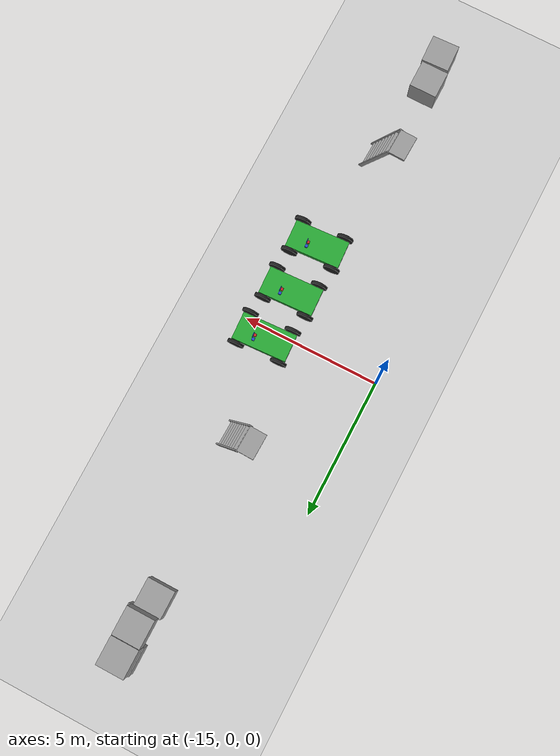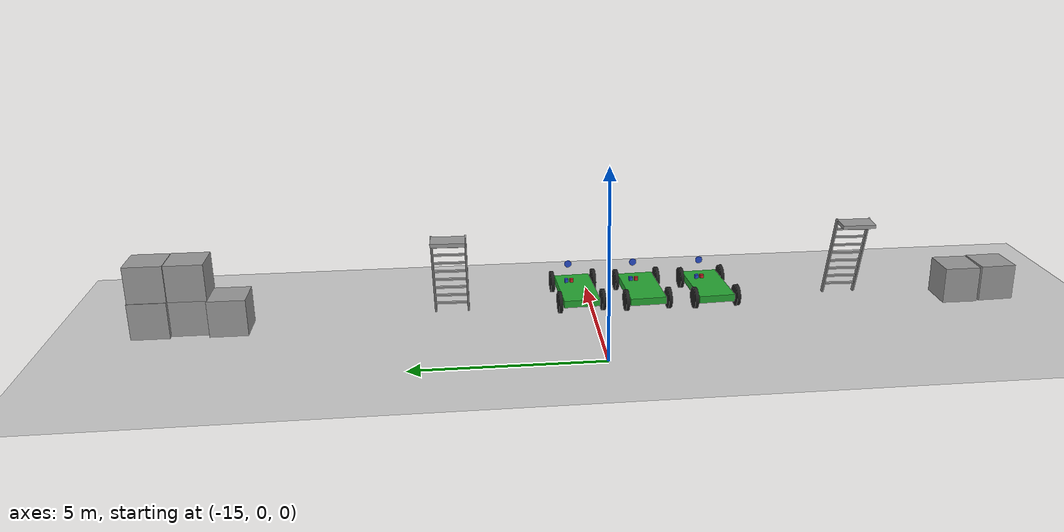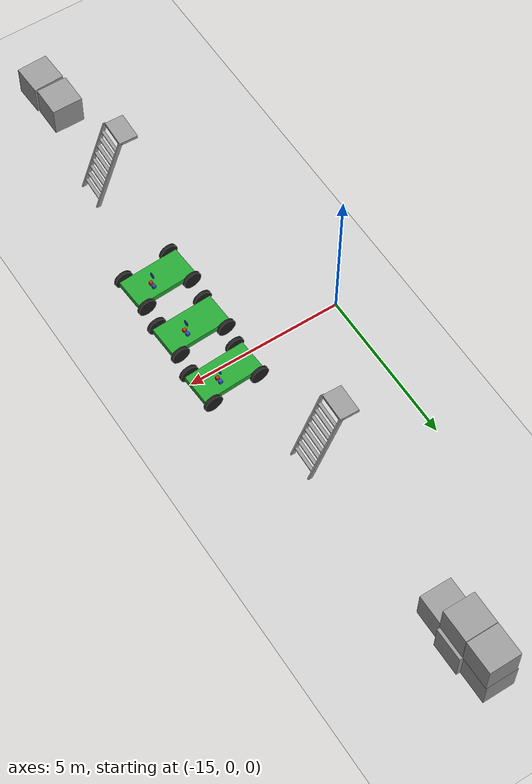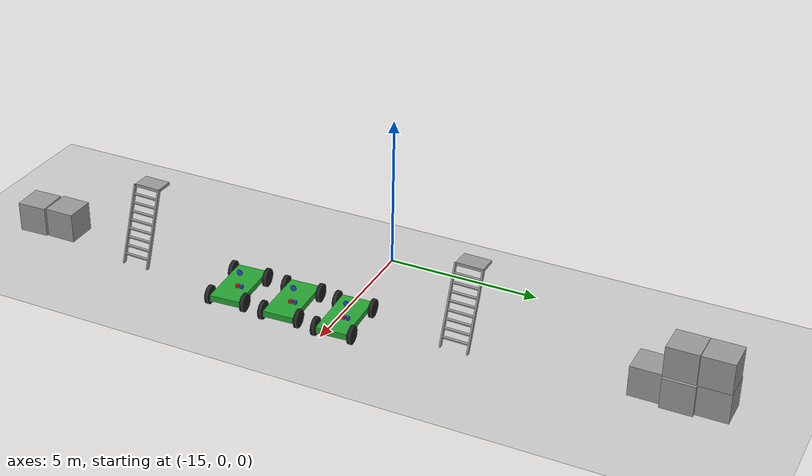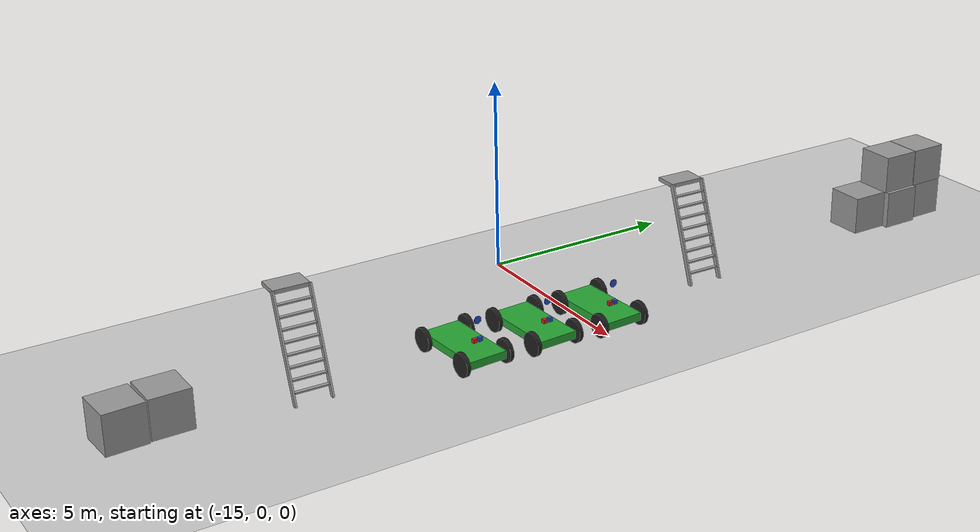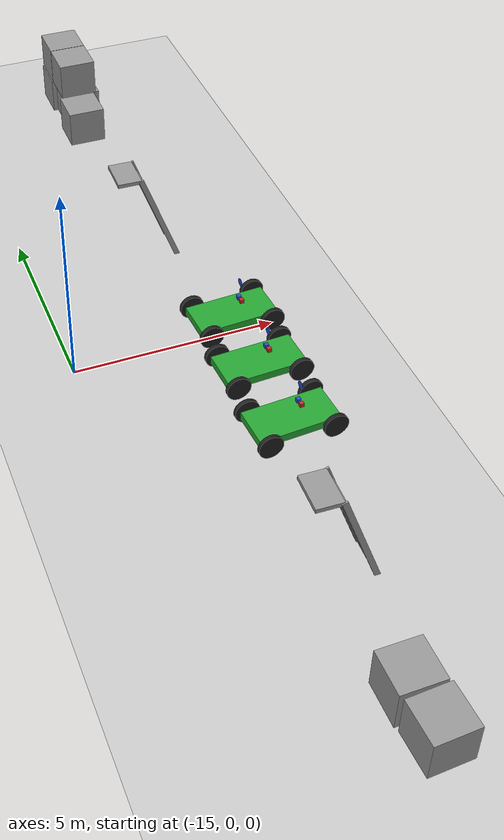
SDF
<sdf version="1.7">
 <world name="default">
  <model name="ground_plane">
   <static>1</static>
   <link name="link">
    <collision name="collision">
     <geometry><plane><normal>0 0 1</normal><size>100 100</size></plane></geometry>
     <surface>
      <contact><collide_bitmask>65535</collide_bitmask></contact>
      <friction><ode><mu>100</mu><mu2>50</mu2></ode></friction>
     </surface>
    </collision>
    <visual name="visual">
     <cast_shadows>0</cast_shadows>
     <geometry><plane><normal>0 0 1</normal><size>100 100</size></plane></geometry>
     <material>
      <script><uri>file://media/materials/scripts/gazebo.material</uri><name>Gazebo/Grey</name></script>
     </material>
    </visual>
   </link>
  </model>
  <model name="unit_box_2">
   <pose>-11.7892 11.6788 0.499993 -4e-06 -1.4e-05 -0.003827</pose>
   <link name="link">
    <inertial>
     <mass>1</mass>
     <inertia>
      <ixx>0.166667</ixx>
      <ixy>0</ixy>
      <ixz>0</ixz>
      <iyy>0.166667</iyy>
      <iyz>0</iyz>
      <izz>0.166667</izz>
     </inertia>
    </inertial>
    <collision name="collision"><geometry><box><size>1 1 1</size></box></geometry></collision>
    <visual name="visual">
     <geometry><box><size>1 1 1</size></box></geometry>
     <material>
      <script><name>Gazebo/Grey</name><uri>file://media/materials/scripts/gazebo.material</uri></script>
     </material>
    </visual>
   </link>
  </model>
  <model name="unit_box_3">
   <pose>-11.7604 11.6669 1.49999 -3.14159 1.1e-05 3.13898</pose>
   <link name="link">
    <inertial>
     <mass>1</mass>
     <inertia>
      <ixx>0.166667</ixx>
      <ixy>0</ixy>
      <ixz>0</ixz>
      <iyy>0.166667</iyy>
      <iyz>0</iyz>
      <izz>0.166667</izz>
     </inertia>
    </inertial>
    <collision name="collision"><geometry><box><size>1 1 1</size></box></geometry></collision>
    <visual name="visual">
     <geometry><box><size>1 1 1</size></box></geometry>
     <material>
      <script><name>Gazebo/Grey</name><uri>file://media/materials/scripts/gazebo.material</uri></script>
     </material>
    </visual>
   </link>
  </model>
  <model name="unit_box_4">
   <pose>-11.8313 9.67825 0.499997 -0 -5e-06 -0.002564</pose>
   <link name="link">
    <inertial>
     <mass>1</mass>
     <inertia>
      <ixx>0.166667</ixx>
      <ixy>0</ixy>
      <ixz>0</ixz>
      <iyy>0.166667</iyy>
      <iyz>0</iyz>
      <izz>0.166667</izz>
     </inertia>
    </inertial>
    <collision name="collision"><geometry><box><size>1 1 1</size></box></geometry></collision>
    <visual name="visual">
     <geometry><box><size>1 1 1</size></box></geometry>
     <material>
      <script><name>Gazebo/Grey</name><uri>file://media/materials/scripts/gazebo.material</uri></script>
     </material>
    </visual>
   </link>
  </model>
  <model name="unit_box_5">
   <pose>-11.7631 10.651 1.5 -3.14159 -0 -0.00395</pose>
   <link name="link">
    <inertial>
     <mass>1</mass>
     <inertia>
      <ixx>0.166667</ixx>
      <ixy>0</ixy>
      <ixz>0</ixz>
      <iyy>0.166667</iyy>
      <iyz>0</iyz>
      <izz>0.166667</izz>
     </inertia>
    </inertial>
    <collision name="collision"><geometry><box><size>1 1 1</size></box></geometry></collision>
    <visual name="visual">
     <geometry><box><size>1 1 1</size></box></geometry>
     <material>
      <script><name>Gazebo/Grey</name><uri>file://media/materials/scripts/gazebo.material</uri></script>
     </material>
    </visual>
   </link>
  </model>
  <model name="unit_box_6">
   <pose>-11.6633 10.6778 0.5 2e-06 -4e-06 -0.002571</pose>
   <link name="link">
    <inertial>
     <mass>1</mass>
     <inertia>
      <ixx>0.166667</ixx>
      <ixy>0</ixy>
      <ixz>0</ixz>
      <iyy>0.166667</iyy>
      <iyz>0</iyz>
      <izz>0.166667</izz>
     </inertia>
    </inertial>
    <collision name="collision"><geometry><box><size>1 1 1</size></box></geometry></collision>
    <visual name="visual">
     <geometry><box><size>1 1 1</size></box></geometry>
     <material>
      <script><name>Gazebo/Grey</name><uri>file://media/materials/scripts/gazebo.material</uri></script>
     </material>
    </visual>
   </link>
  </model>
  <model name="unit_box_17_clone_0">
   <pose>-11.7955 -10.3916 0.499995 -0 -1e-05 -0.000262</pose>
   <link name="link">
    <inertial>
     <mass>1</mass>
     <inertia>
      <ixx>0.166667</ixx>
      <ixy>0</ixy>
      <ixz>0</ixz>
      <iyy>0.166667</iyy>
      <iyz>0</iyz>
      <izz>0.166667</izz>
     </inertia>
    </inertial>
    <collision name="collision"><geometry><box><size>1 1 1</size></box></geometry></collision>
    <visual name="visual">
     <geometry><box><size>1 1 1</size></box></geometry>
     <material>
      <script><name>Gazebo/Grey</name><uri>file://media/materials/scripts/gazebo.material</uri></script>
     </material>
    </visual>
   </link>
  </model>
  <model name="unit_box_17_clone_1">
   <pose>-11.7294 -11.4535 0.499995 1.57079 -0 0.040552</pose>
   <link name="link">
    <inertial>
     <mass>1</mass>
     <inertia>
      <ixx>0.166667</ixx>
      <ixy>0</ixy>
      <ixz>0</ixz>
      <iyy>0.166667</iyy>
      <iyz>0</iyz>
      <izz>0.166667</izz>
     </inertia>
    </inertial>
    <collision name="collision"><geometry><box><size>1 1 1</size></box></geometry></collision>
    <visual name="visual">
     <geometry><box><size>1 1 1</size></box></geometry>
     <material>
      <script><name>Gazebo/Grey</name><uri>file://media/materials/scripts/gazebo.material</uri></script>
     </material>
    </visual>
   </link>
  </model>
  <model name="car">
   <link name="chassis">
    <pose>0 0 0.3 0 -0 0</pose>
    <collision name="collision"><geometry><box><size>2 1 0.2</size></box></geometry></collision>
    <visual name="visual">
     <geometry><box><size>2 1 0.2</size></box></geometry>
     <material>
      <script><uri>file://media/materials/scripts/gazebo.material</uri><name>Gazebo/Green</name></script>
     </material>
    </visual>
    <inertial>
     <inertia><ixx>1</ixx><ixy>0</ixy><ixz>0</ixz><iyy>1</iyy><iyz>0</iyz><izz>1</izz></inertia>
     <mass>1</mass>
    </inertial>
   </link>
   <link name="front_left_wheel">
    <pose>0.8 0.6 0.3 -0 1.5707 1.5707</pose>
    <collision name="collision">
     <geometry><cylinder><radius>0.3</radius><length>0.1</length></cylinder></geometry>
    </collision>
    <visual name="visual">
     <geometry><cylinder><radius>0.3</radius><length>0.1</length></cylinder></geometry>
     <material>
      <script><uri>file://media/materials/scripts/gazebo.material</uri><name>Gazebo/Black</name></script>
     </material>
    </visual>
    <inertial>
     <inertia><ixx>1</ixx><ixy>0</ixy><ixz>0</ixz><iyy>1</iyy><iyz>0</iyz><izz>1</izz></inertia>
     <mass>1</mass>
    </inertial>
   </link>
   <link name="front_right_wheel">
    <pose>0.8 -0.6 0.3 -0 1.5707 1.5707</pose>
    <collision name="collision">
     <geometry><cylinder><radius>0.3</radius><length>0.1</length></cylinder></geometry>
    </collision>
    <visual name="visual">
     <geometry><cylinder><radius>0.3</radius><length>0.1</length></cylinder></geometry>
     <material>
      <script><uri>file://media/materials/scripts/gazebo.material</uri><name>Gazebo/Black</name></script>
     </material>
    </visual>
    <inertial>
     <inertia><ixx>1</ixx><ixy>0</ixy><ixz>0</ixz><iyy>1</iyy><iyz>0</iyz><izz>1</izz></inertia>
     <mass>1</mass>
    </inertial>
   </link>
   <link name="back_right_wheel">
    <pose>-0.8 -0.6 0.3 -0 1.5707 1.5707</pose>
    <collision name="collision">
     <geometry><cylinder><radius>0.3</radius><length>0.1</length></cylinder></geometry>
    </collision>
    <visual name="visual">
     <geometry><cylinder><radius>0.3</radius><length>0.1</length></cylinder></geometry>
     <material>
      <script><uri>file://media/materials/scripts/gazebo.material</uri><name>Gazebo/Black</name></script>
     </material>
    </visual>
    <inertial>
     <inertia><ixx>1</ixx><ixy>0</ixy><ixz>0</ixz><iyy>1</iyy><iyz>0</iyz><izz>1</izz></inertia>
     <mass>1</mass>
    </inertial>
   </link>
   <link name="back_left_wheel">
    <pose>-0.8 0.6 0.3 -0 1.5707 1.5707</pose>
    <collision name="collision">
     <geometry><cylinder><radius>0.3</radius><length>0.1</length></cylinder></geometry>
    </collision>
    <visual name="visual">
     <geometry><cylinder><radius>0.3</radius><length>0.1</length></cylinder></geometry>
     <material>
      <script><uri>file://media/materials/scripts/gazebo.material</uri><name>Gazebo/Black</name></script>
     </material>
    </visual>
    <inertial>
     <inertia><ixx>1</ixx><ixy>0</ixy><ixz>0</ixz><iyy>1</iyy><iyz>0</iyz><izz>1</izz></inertia>
     <mass>1</mass>
    </inertial>
   </link>
   <link name="gas_pedal">
    <pose>0.3 0.1 0.5 0 -0 0</pose>
    <collision name="collision"><geometry><box><size>0.1 0.1 0.1</size></box></geometry></collision>
    <visual name="visual">
     <geometry><box><size>0.1 0.1 0.1</size></box></geometry>
     <material>
      <script><uri>file://media/materials/scripts/gazebo.material</uri><name>Gazebo/Red</name></script>
     </material>
    </visual>
    <inertial>
     <inertia><ixx>1</ixx><ixy>0</ixy><ixz>0</ixz><iyy>1</iyy><iyz>0</iyz><izz>1</izz></inertia>
     <mass>1</mass>
    </inertial>
   </link>
   <link name="brake_pedal">
    <pose>0.3 0.25 0.5 0 -0 0</pose>
    <collision name="collision"><geometry><box><size>0.1 0.1 0.1</size></box></geometry></collision>
    <visual name="visual">
     <geometry><box><size>0.1 0.1 0.1</size></box></geometry>
     <material>
      <script><uri>file://media/materials/scripts/gazebo.material</uri><name>Gazebo/Blue</name></script>
     </material>
    </visual>
    <inertial>
     <inertia><ixx>1</ixx><ixy>0</ixy><ixz>0</ixz><iyy>1</iyy><iyz>0</iyz><izz>1</izz></inertia>
     <mass>1</mass>
    </inertial>
   </link>
   <link name="steering_wheel">
    <pose>0.3 0.2 1 0 1.5707 0</pose>
    <collision name="collision">
     <geometry><cylinder><radius>0.1</radius><length>0.01</length></cylinder></geometry>
    </collision>
    <visual name="visual">
     <geometry><cylinder><radius>0.1</radius><length>0.01</length></cylinder></geometry>
     <material>
      <script><uri>file://media/materials/scripts/gazebo.material</uri><name>Gazebo/Blue</name></script>
     </material>
    </visual>
    <inertial>
     <inertia><ixx>1</ixx><ixy>0</ixy><ixz>0</ixz><iyy>1</iyy><iyz>0</iyz><izz>1</izz></inertia>
     <mass>1</mass>
    </inertial>
   </link>
   <joint name="gas_joint" type="prismatic">
    <parent>chassis</parent>
    <child>gas_pedal</child>
    <axis>
     <xyz expressed_in="__model__">1 0 0</xyz>
     <limit><lower>0</lower><upper>0.2</upper></limit>
     <dynamics><spring_reference>0</spring_reference><spring_stiffness>0</spring_stiffness></dynamics>
    </axis>
   </joint>
   <joint name="brake_joint" type="prismatic">
    <parent>chassis</parent>
    <child>brake_pedal</child>
    <axis>
     <xyz expressed_in="__model__">1 0 0</xyz>
     <limit><lower>0</lower><upper>0.2</upper></limit>
     <dynamics><spring_reference>0</spring_reference><spring_stiffness>0</spring_stiffness></dynamics>
    </axis>
   </joint>
   <joint name="steering_joint" type="revolute">
    <parent>chassis</parent>
    <child>steering_wheel</child>
    <axis>
     <xyz expressed_in="__model__">1 0 0</xyz>
     <limit><lower>-7.853</lower><upper>7.853</upper></limit>
     <dynamics><spring_reference>0</spring_reference><spring_stiffness>0</spring_stiffness></dynamics>
    </axis>
   </joint>
   <joint name="front_left_joint" type="revolute2">
    <parent>chassis</parent>
    <child>front_left_wheel</child>
    <axis>
     <xyz expressed_in="__model__">0 0 1</xyz>
     <limit><lower>-1.5526e-05</lower><upper>-1.5526e-05</upper></limit>
     <dynamics><spring_reference>0</spring_reference><spring_stiffness>0</spring_stiffness></dynamics>
    </axis>
    <axis2>
     <xyz expressed_in="__model__">0 1 0</xyz>
     <limit><upper>1e+16</upper><lower>-1e+16</lower></limit>
     <dynamics><spring_reference>0</spring_reference><spring_stiffness>0</spring_stiffness></dynamics>
    </axis2>
    <physics><ode><limit><cfm>0</cfm><erp>0.9</erp></limit></ode></physics>
   </joint>
   <joint name="front_right_joint" type="revolute2">
    <parent>chassis</parent>
    <child>front_right_wheel</child>
    <axis>
     <xyz expressed_in="__model__">0 0 1</xyz>
     <limit><lower>-1.5526e-05</lower><upper>-1.5526e-05</upper></limit>
     <dynamics><spring_reference>0</spring_reference><spring_stiffness>0</spring_stiffness></dynamics>
    </axis>
    <axis2>
     <xyz expressed_in="__model__">0 1 0</xyz>
     <limit><upper>1e+16</upper><lower>-1e+16</lower></limit>
     <dynamics><spring_reference>0</spring_reference><spring_stiffness>0</spring_stiffness></dynamics>
    </axis2>
    <physics><ode><limit><cfm>0</cfm><erp>0.9</erp></limit></ode></physics>
   </joint>
   <joint name="back_right_joint" type="revolute2">
    <parent>chassis</parent>
    <child>back_right_wheel</child>
    <axis>
     <xyz expressed_in="__model__">0 0 1</xyz>
     <limit><lower>0</lower><upper>0</upper></limit>
     <dynamics><spring_reference>0</spring_reference><spring_stiffness>0</spring_stiffness></dynamics>
    </axis>
    <axis2>
     <xyz expressed_in="__model__">0 1 0</xyz>
     <limit><upper>1e+16</upper><lower>-1e+16</lower></limit>
     <dynamics><spring_reference>0</spring_reference><spring_stiffness>0</spring_stiffness></dynamics>
    </axis2>
    <physics><ode><limit><cfm>0</cfm><erp>0.9</erp></limit></ode></physics>
   </joint>
   <joint name="back_left_joint" type="revolute2">
    <parent>chassis</parent>
    <child>back_left_wheel</child>
    <axis>
     <xyz expressed_in="__model__">0 0 1</xyz>
     <limit><lower>0</lower><upper>0</upper></limit>
     <dynamics><spring_reference>0</spring_reference><spring_stiffness>0</spring_stiffness></dynamics>
    </axis>
    <axis2>
     <xyz expressed_in="__model__">0 1 0</xyz>
     <limit><upper>1e+16</upper><lower>-1e+16</lower></limit>
     <dynamics><spring_reference>0</spring_reference><spring_stiffness>0</spring_stiffness></dynamics>
    </axis2>
    <physics><ode><limit><cfm>0</cfm><erp>0.9</erp></limit></ode></physics>
   </joint>
   <plugin name="vehicle" filename="libVehiclePlugin.so">
    <front_left>front_left_joint</front_left>
    <front_right>front_right_joint</front_right>
    <back_left>back_left_joint</back_left>
    <back_right>back_right_joint</back_right>
    <gas>gas_joint</gas>
    <brake>brake_joint</brake>
    <steering>steering_joint</steering>
    <front_power>10</front_power>
    <rear_power>10</rear_power>
    <tire_angle_range>0.5</tire_angle_range>
    <max_speed>10</max_speed>
    <aero_load>0.1</aero_load>
   </plugin>
   <pose>-10.9669 -1.48455 9e-06 -8e-06 2e-06 0.047117</pose>
  </model>
  <model name="car_clone">
   <link name="chassis">
    <pose>0 0 0.3 0 -0 0</pose>
    <collision name="collision"><geometry><box><size>2 1 0.2</size></box></geometry></collision>
    <visual name="visual">
     <geometry><box><size>2 1 0.2</size></box></geometry>
     <material>
      <script><uri>file://media/materials/scripts/gazebo.material</uri><name>Gazebo/Green</name></script>
     </material>
    </visual>
    <inertial>
     <inertia><ixx>1</ixx><ixy>0</ixy><ixz>0</ixz><iyy>1</iyy><iyz>0</iyz><izz>1</izz></inertia>
     <mass>1</mass>
    </inertial>
   </link>
   <link name="front_left_wheel">
    <pose>0.8 0.6 0.3 -0 1.5707 1.5707</pose>
    <collision name="collision">
     <geometry><cylinder><radius>0.3</radius><length>0.1</length></cylinder></geometry>
    </collision>
    <visual name="visual">
     <geometry><cylinder><radius>0.3</radius><length>0.1</length></cylinder></geometry>
     <material>
      <script><uri>file://media/materials/scripts/gazebo.material</uri><name>Gazebo/Black</name></script>
     </material>
    </visual>
    <inertial>
     <inertia><ixx>1</ixx><ixy>0</ixy><ixz>0</ixz><iyy>1</iyy><iyz>0</iyz><izz>1</izz></inertia>
     <mass>1</mass>
    </inertial>
   </link>
   <link name="front_right_wheel">
    <pose>0.8 -0.6 0.3 -0 1.5707 1.5707</pose>
    <collision name="collision">
     <geometry><cylinder><radius>0.3</radius><length>0.1</length></cylinder></geometry>
    </collision>
    <visual name="visual">
     <geometry><cylinder><radius>0.3</radius><length>0.1</length></cylinder></geometry>
     <material>
      <script><uri>file://media/materials/scripts/gazebo.material</uri><name>Gazebo/Black</name></script>
     </material>
    </visual>
    <inertial>
     <inertia><ixx>1</ixx><ixy>0</ixy><ixz>0</ixz><iyy>1</iyy><iyz>0</iyz><izz>1</izz></inertia>
     <mass>1</mass>
    </inertial>
   </link>
   <link name="back_right_wheel">
    <pose>-0.8 -0.6 0.3 -0 1.5707 1.5707</pose>
    <collision name="collision">
     <geometry><cylinder><radius>0.3</radius><length>0.1</length></cylinder></geometry>
    </collision>
    <visual name="visual">
     <geometry><cylinder><radius>0.3</radius><length>0.1</length></cylinder></geometry>
     <material>
      <script><uri>file://media/materials/scripts/gazebo.material</uri><name>Gazebo/Black</name></script>
     </material>
    </visual>
    <inertial>
     <inertia><ixx>1</ixx><ixy>0</ixy><ixz>0</ixz><iyy>1</iyy><iyz>0</iyz><izz>1</izz></inertia>
     <mass>1</mass>
    </inertial>
   </link>
   <link name="back_left_wheel">
    <pose>-0.8 0.6 0.3 -0 1.5707 1.5707</pose>
    <collision name="collision">
     <geometry><cylinder><radius>0.3</radius><length>0.1</length></cylinder></geometry>
    </collision>
    <visual name="visual">
     <geometry><cylinder><radius>0.3</radius><length>0.1</length></cylinder></geometry>
     <material>
      <script><uri>file://media/materials/scripts/gazebo.material</uri><name>Gazebo/Black</name></script>
     </material>
    </visual>
    <inertial>
     <inertia><ixx>1</ixx><ixy>0</ixy><ixz>0</ixz><iyy>1</iyy><iyz>0</iyz><izz>1</izz></inertia>
     <mass>1</mass>
    </inertial>
   </link>
   <link name="gas_pedal">
    <pose>0.3 0.1 0.5 0 -0 0</pose>
    <collision name="collision"><geometry><box><size>0.1 0.1 0.1</size></box></geometry></collision>
    <visual name="visual">
     <geometry><box><size>0.1 0.1 0.1</size></box></geometry>
     <material>
      <script><uri>file://media/materials/scripts/gazebo.material</uri><name>Gazebo/Red</name></script>
     </material>
    </visual>
    <inertial>
     <inertia><ixx>1</ixx><ixy>0</ixy><ixz>0</ixz><iyy>1</iyy><iyz>0</iyz><izz>1</izz></inertia>
     <mass>1</mass>
    </inertial>
   </link>
   <link name="brake_pedal">
    <pose>0.3 0.25 0.5 0 -0 0</pose>
    <collision name="collision"><geometry><box><size>0.1 0.1 0.1</size></box></geometry></collision>
    <visual name="visual">
     <geometry><box><size>0.1 0.1 0.1</size></box></geometry>
     <material>
      <script><uri>file://media/materials/scripts/gazebo.material</uri><name>Gazebo/Blue</name></script>
     </material>
    </visual>
    <inertial>
     <inertia><ixx>1</ixx><ixy>0</ixy><ixz>0</ixz><iyy>1</iyy><iyz>0</iyz><izz>1</izz></inertia>
     <mass>1</mass>
    </inertial>
   </link>
   <link name="steering_wheel">
    <pose>0.3 0.2 1 0 1.5707 0</pose>
    <collision name="collision">
     <geometry><cylinder><radius>0.1</radius><length>0.01</length></cylinder></geometry>
    </collision>
    <visual name="visual">
     <geometry><cylinder><radius>0.1</radius><length>0.01</length></cylinder></geometry>
     <material>
      <script><uri>file://media/materials/scripts/gazebo.material</uri><name>Gazebo/Blue</name></script>
     </material>
    </visual>
    <inertial>
     <inertia><ixx>1</ixx><ixy>0</ixy><ixz>0</ixz><iyy>1</iyy><iyz>0</iyz><izz>1</izz></inertia>
     <mass>1</mass>
    </inertial>
   </link>
   <joint name="gas_joint" type="prismatic">
    <parent>chassis</parent>
    <child>gas_pedal</child>
    <axis>
     <xyz expressed_in="__model__">1 0 0</xyz>
     <limit><lower>0</lower><upper>0.2</upper></limit>
     <dynamics><spring_reference>0</spring_reference><spring_stiffness>0</spring_stiffness></dynamics>
    </axis>
   </joint>
   <joint name="brake_joint" type="prismatic">
    <parent>chassis</parent>
    <child>brake_pedal</child>
    <axis>
     <xyz expressed_in="__model__">1 0 0</xyz>
     <limit><lower>0</lower><upper>0.2</upper></limit>
     <dynamics><spring_reference>0</spring_reference><spring_stiffness>0</spring_stiffness></dynamics>
    </axis>
   </joint>
   <joint name="steering_joint" type="revolute">
    <parent>chassis</parent>
    <child>steering_wheel</child>
    <axis>
     <xyz expressed_in="__model__">1 0 0</xyz>
     <limit><lower>-7.853</lower><upper>7.853</upper></limit>
     <dynamics><spring_reference>0</spring_reference><spring_stiffness>0</spring_stiffness></dynamics>
    </axis>
   </joint>
   <joint name="front_left_joint" type="revolute2">
    <parent>chassis</parent>
    <child>front_left_wheel</child>
    <axis>
     <xyz expressed_in="__model__">0 0 1</xyz>
     <limit><lower>7.26795e-06</lower><upper>7.26795e-06</upper></limit>
     <dynamics><spring_reference>0</spring_reference><spring_stiffness>0</spring_stiffness></dynamics>
    </axis>
    <axis2>
     <xyz expressed_in="__model__">0 1 0</xyz>
     <limit><upper>1e+16</upper><lower>-1e+16</lower></limit>
     <dynamics><spring_reference>0</spring_reference><spring_stiffness>0</spring_stiffness></dynamics>
    </axis2>
    <physics><ode><limit><cfm>0</cfm><erp>0.9</erp></limit></ode></physics>
   </joint>
   <joint name="front_right_joint" type="revolute2">
    <parent>chassis</parent>
    <child>front_right_wheel</child>
    <axis>
     <xyz expressed_in="__model__">0 0 1</xyz>
     <limit><lower>7.26795e-06</lower><upper>7.26795e-06</upper></limit>
     <dynamics><spring_reference>0</spring_reference><spring_stiffness>0</spring_stiffness></dynamics>
    </axis>
    <axis2>
     <xyz expressed_in="__model__">0 1 0</xyz>
     <limit><upper>1e+16</upper><lower>-1e+16</lower></limit>
     <dynamics><spring_reference>0</spring_reference><spring_stiffness>0</spring_stiffness></dynamics>
    </axis2>
    <physics><ode><limit><cfm>0</cfm><erp>0.9</erp></limit></ode></physics>
   </joint>
   <joint name="back_right_joint" type="revolute2">
    <parent>chassis</parent>
    <child>back_right_wheel</child>
    <axis>
     <xyz expressed_in="__model__">0 0 1</xyz>
     <limit><lower>0</lower><upper>0</upper></limit>
     <dynamics><spring_reference>0</spring_reference><spring_stiffness>0</spring_stiffness></dynamics>
    </axis>
    <axis2>
     <xyz expressed_in="__model__">0 1 0</xyz>
     <limit><upper>1e+16</upper><lower>-1e+16</lower></limit>
     <dynamics><spring_reference>0</spring_reference><spring_stiffness>0</spring_stiffness></dynamics>
    </axis2>
    <physics><ode><limit><cfm>0</cfm><erp>0.9</erp></limit></ode></physics>
   </joint>
   <joint name="back_left_joint" type="revolute2">
    <parent>chassis</parent>
    <child>back_left_wheel</child>
    <axis>
     <xyz expressed_in="__model__">0 0 1</xyz>
     <limit><lower>0</lower><upper>0</upper></limit>
     <dynamics><spring_reference>0</spring_reference><spring_stiffness>0</spring_stiffness></dynamics>
    </axis>
    <axis2>
     <xyz expressed_in="__model__">0 1 0</xyz>
     <limit><upper>1e+16</upper><lower>-1e+16</lower></limit>
     <dynamics><spring_reference>0</spring_reference><spring_stiffness>0</spring_stiffness></dynamics>
    </axis2>
    <physics><ode><limit><cfm>0</cfm><erp>0.9</erp></limit></ode></physics>
   </joint>
   <plugin name="vehicle" filename="libVehiclePlugin.so">
    <front_left>front_left_joint</front_left>
    <front_right>front_right_joint</front_right>
    <back_left>back_left_joint</back_left>
    <back_right>back_right_joint</back_right>
    <gas>gas_joint</gas>
    <brake>brake_joint</brake>
    <steering>steering_joint</steering>
    <front_power>10</front_power>
    <rear_power>10</rear_power>
    <tire_angle_range>0.5</tire_angle_range>
    <max_speed>10</max_speed>
    <aero_load>0.1</aero_load>
   </plugin>
   <pose>-11.0012 -3.39352 1e-05 -6e-06 3e-06 0.059256</pose>
  </model>
  <model name="car_clone_0">
   <link name="chassis">
    <pose>0 0 0.3 0 -0 0</pose>
    <collision name="collision"><geometry><box><size>2 1 0.2</size></box></geometry></collision>
    <visual name="visual">
     <geometry><box><size>2 1 0.2</size></box></geometry>
     <material>
      <script><uri>file://media/materials/scripts/gazebo.material</uri><name>Gazebo/Green</name></script>
     </material>
    </visual>
    <inertial>
     <inertia><ixx>1</ixx><ixy>0</ixy><ixz>0</ixz><iyy>1</iyy><iyz>0</iyz><izz>1</izz></inertia>
     <mass>1</mass>
    </inertial>
   </link>
   <link name="front_left_wheel">
    <pose>0.8 0.6 0.3 -0 1.5707 1.5707</pose>
    <collision name="collision">
     <geometry><cylinder><radius>0.3</radius><length>0.1</length></cylinder></geometry>
    </collision>
    <visual name="visual">
     <geometry><cylinder><radius>0.3</radius><length>0.1</length></cylinder></geometry>
     <material>
      <script><uri>file://media/materials/scripts/gazebo.material</uri><name>Gazebo/Black</name></script>
     </material>
    </visual>
    <inertial>
     <inertia><ixx>1</ixx><ixy>0</ixy><ixz>0</ixz><iyy>1</iyy><iyz>0</iyz><izz>1</izz></inertia>
     <mass>1</mass>
    </inertial>
   </link>
   <link name="front_right_wheel">
    <pose>0.8 -0.6 0.3 -0 1.5707 1.5707</pose>
    <collision name="collision">
     <geometry><cylinder><radius>0.3</radius><length>0.1</length></cylinder></geometry>
    </collision>
    <visual name="visual">
     <geometry><cylinder><radius>0.3</radius><length>0.1</length></cylinder></geometry>
     <material>
      <script><uri>file://media/materials/scripts/gazebo.material</uri><name>Gazebo/Black</name></script>
     </material>
    </visual>
    <inertial>
     <inertia><ixx>1</ixx><ixy>0</ixy><ixz>0</ixz><iyy>1</iyy><iyz>0</iyz><izz>1</izz></inertia>
     <mass>1</mass>
    </inertial>
   </link>
   <link name="back_right_wheel">
    <pose>-0.8 -0.6 0.3 -0 1.5707 1.5707</pose>
    <collision name="collision">
     <geometry><cylinder><radius>0.3</radius><length>0.1</length></cylinder></geometry>
    </collision>
    <visual name="visual">
     <geometry><cylinder><radius>0.3</radius><length>0.1</length></cylinder></geometry>
     <material>
      <script><uri>file://media/materials/scripts/gazebo.material</uri><name>Gazebo/Black</name></script>
     </material>
    </visual>
    <inertial>
     <inertia><ixx>1</ixx><ixy>0</ixy><ixz>0</ixz><iyy>1</iyy><iyz>0</iyz><izz>1</izz></inertia>
     <mass>1</mass>
    </inertial>
   </link>
   <link name="back_left_wheel">
    <pose>-0.8 0.6 0.3 -0 1.5707 1.5707</pose>
    <collision name="collision">
     <geometry><cylinder><radius>0.3</radius><length>0.1</length></cylinder></geometry>
    </collision>
    <visual name="visual">
     <geometry><cylinder><radius>0.3</radius><length>0.1</length></cylinder></geometry>
     <material>
      <script><uri>file://media/materials/scripts/gazebo.material</uri><name>Gazebo/Black</name></script>
     </material>
    </visual>
    <inertial>
     <inertia><ixx>1</ixx><ixy>0</ixy><ixz>0</ixz><iyy>1</iyy><iyz>0</iyz><izz>1</izz></inertia>
     <mass>1</mass>
    </inertial>
   </link>
   <link name="gas_pedal">
    <pose>0.3 0.1 0.5 0 -0 0</pose>
    <collision name="collision"><geometry><box><size>0.1 0.1 0.1</size></box></geometry></collision>
    <visual name="visual">
     <geometry><box><size>0.1 0.1 0.1</size></box></geometry>
     <material>
      <script><uri>file://media/materials/scripts/gazebo.material</uri><name>Gazebo/Red</name></script>
     </material>
    </visual>
    <inertial>
     <inertia><ixx>1</ixx><ixy>0</ixy><ixz>0</ixz><iyy>1</iyy><iyz>0</iyz><izz>1</izz></inertia>
     <mass>1</mass>
    </inertial>
   </link>
   <link name="brake_pedal">
    <pose>0.3 0.25 0.5 0 -0 0</pose>
    <collision name="collision"><geometry><box><size>0.1 0.1 0.1</size></box></geometry></collision>
    <visual name="visual">
     <geometry><box><size>0.1 0.1 0.1</size></box></geometry>
     <material>
      <script><uri>file://media/materials/scripts/gazebo.material</uri><name>Gazebo/Blue</name></script>
     </material>
    </visual>
    <inertial>
     <inertia><ixx>1</ixx><ixy>0</ixy><ixz>0</ixz><iyy>1</iyy><iyz>0</iyz><izz>1</izz></inertia>
     <mass>1</mass>
    </inertial>
   </link>
   <link name="steering_wheel">
    <pose>0.3 0.2 1 0 1.5707 0</pose>
    <collision name="collision">
     <geometry><cylinder><radius>0.1</radius><length>0.01</length></cylinder></geometry>
    </collision>
    <visual name="visual">
     <geometry><cylinder><radius>0.1</radius><length>0.01</length></cylinder></geometry>
     <material>
      <script><uri>file://media/materials/scripts/gazebo.material</uri><name>Gazebo/Blue</name></script>
     </material>
    </visual>
    <inertial>
     <inertia><ixx>1</ixx><ixy>0</ixy><ixz>0</ixz><iyy>1</iyy><iyz>0</iyz><izz>1</izz></inertia>
     <mass>1</mass>
    </inertial>
   </link>
   <joint name="gas_joint" type="prismatic">
    <parent>chassis</parent>
    <child>gas_pedal</child>
    <axis>
     <xyz expressed_in="__model__">1 0 0</xyz>
     <limit><lower>0</lower><upper>0.2</upper></limit>
     <dynamics><spring_reference>0</spring_reference><spring_stiffness>0</spring_stiffness></dynamics>
    </axis>
   </joint>
   <joint name="brake_joint" type="prismatic">
    <parent>chassis</parent>
    <child>brake_pedal</child>
    <axis>
     <xyz expressed_in="__model__">1 0 0</xyz>
     <limit><lower>0</lower><upper>0.2</upper></limit>
     <dynamics><spring_reference>0</spring_reference><spring_stiffness>0</spring_stiffness></dynamics>
    </axis>
   </joint>
   <joint name="steering_joint" type="revolute">
    <parent>chassis</parent>
    <child>steering_wheel</child>
    <axis>
     <xyz expressed_in="__model__">1 0 0</xyz>
     <limit><lower>-7.853</lower><upper>7.853</upper></limit>
     <dynamics><spring_reference>0</spring_reference><spring_stiffness>0</spring_stiffness></dynamics>
    </axis>
   </joint>
   <joint name="front_left_joint" type="revolute2">
    <parent>chassis</parent>
    <child>front_left_wheel</child>
    <axis>
     <xyz expressed_in="__model__">0 0 1</xyz>
     <limit><lower>7.76398e-06</lower><upper>7.76398e-06</upper></limit>
     <dynamics><spring_reference>0</spring_reference><spring_stiffness>0</spring_stiffness></dynamics>
    </axis>
    <axis2>
     <xyz expressed_in="__model__">0 1 0</xyz>
     <limit><upper>1e+16</upper><lower>-1e+16</lower></limit>
     <dynamics><spring_reference>0</spring_reference><spring_stiffness>0</spring_stiffness></dynamics>
    </axis2>
    <physics><ode><limit><cfm>0</cfm><erp>0.9</erp></limit></ode></physics>
   </joint>
   <joint name="front_right_joint" type="revolute2">
    <parent>chassis</parent>
    <child>front_right_wheel</child>
    <axis>
     <xyz expressed_in="__model__">0 0 1</xyz>
     <limit><lower>7.76398e-06</lower><upper>7.76398e-06</upper></limit>
     <dynamics><spring_reference>0</spring_reference><spring_stiffness>0</spring_stiffness></dynamics>
    </axis>
    <axis2>
     <xyz expressed_in="__model__">0 1 0</xyz>
     <limit><upper>1e+16</upper><lower>-1e+16</lower></limit>
     <dynamics><spring_reference>0</spring_reference><spring_stiffness>0</spring_stiffness></dynamics>
    </axis2>
    <physics><ode><limit><cfm>0</cfm><erp>0.9</erp></limit></ode></physics>
   </joint>
   <joint name="back_right_joint" type="revolute2">
    <parent>chassis</parent>
    <child>back_right_wheel</child>
    <axis>
     <xyz expressed_in="__model__">0 0 1</xyz>
     <limit><lower>0</lower><upper>0</upper></limit>
     <dynamics><spring_reference>0</spring_reference><spring_stiffness>0</spring_stiffness></dynamics>
    </axis>
    <axis2>
     <xyz expressed_in="__model__">0 1 0</xyz>
     <limit><upper>1e+16</upper><lower>-1e+16</lower></limit>
     <dynamics><spring_reference>0</spring_reference><spring_stiffness>0</spring_stiffness></dynamics>
    </axis2>
    <physics><ode><limit><cfm>0</cfm><erp>0.9</erp></limit></ode></physics>
   </joint>
   <joint name="back_left_joint" type="revolute2">
    <parent>chassis</parent>
    <child>back_left_wheel</child>
    <axis>
     <xyz expressed_in="__model__">0 0 1</xyz>
     <limit><lower>0</lower><upper>0</upper></limit>
     <dynamics><spring_reference>0</spring_reference><spring_stiffness>0</spring_stiffness></dynamics>
    </axis>
    <axis2>
     <xyz expressed_in="__model__">0 1 0</xyz>
     <limit><upper>1e+16</upper><lower>-1e+16</lower></limit>
     <dynamics><spring_reference>0</spring_reference><spring_stiffness>0</spring_stiffness></dynamics>
    </axis2>
    <physics><ode><limit><cfm>0</cfm><erp>0.9</erp></limit></ode></physics>
   </joint>
   <plugin name="vehicle" filename="libVehiclePlugin.so">
    <front_left>front_left_joint</front_left>
    <front_right>front_right_joint</front_right>
    <back_left>back_left_joint</back_left>
    <back_right>back_right_joint</back_right>
    <gas>gas_joint</gas>
    <brake>brake_joint</brake>
    <steering>steering_joint</steering>
    <front_power>10</front_power>
    <rear_power>10</rear_power>
    <tire_angle_range>0.5</tire_angle_range>
    <max_speed>10</max_speed>
    <aero_load>0.1</aero_load>
   </plugin>
   <pose>-10.9017 0.360348 1e-05 -8e-06 2e-06 0.05222</pose>
  </model>
  <model name="ladder_70deg_0rails_clone_1">
   <static>1</static>
   <link name="step0">
    <pose>0 0.097059 0.266667 0 -0 0</pose>
    <inertial>
     <mass>9.75482</mass>
     <inertia>
      <ixx>0.00957124</ixx>
      <iyy>0.65963</iyy>
      <izz>0.666842</izz>
      <ixy>0</ixy>
      <ixz>0</ixz>
      <iyz>0</iyz>
     </inertia>
    </inertial>
    <collision name="collision"><geometry><box><size>0.9 0.1016 0.0381</size></box></geometry></collision>
    <visual name="visual">
     <geometry><box><size>0.9 0.1016 0.0381</size></box></geometry>
     <material>
      <script><uri>file://media/materials/scripts/gazebo.material</uri><name>Gazebo/Grey</name></script>
     </material>
    </visual>
   </link>
   <link name="step1">
    <pose>0 0.194117 0.533333 0 -0 0</pose>
    <inertial>
     <mass>9.75482</mass>
     <inertia>
      <ixx>0.00957124</ixx>
      <iyy>0.65963</iyy>
      <izz>0.666842</izz>
      <ixy>0</ixy>
      <ixz>0</ixz>
      <iyz>0</iyz>
     </inertia>
    </inertial>
    <collision name="collision"><geometry><box><size>0.9 0.1016 0.0381</size></box></geometry></collision>
    <visual name="visual">
     <geometry><box><size>0.9 0.1016 0.0381</size></box></geometry>
     <material>
      <script><uri>file://media/materials/scripts/gazebo.material</uri><name>Gazebo/Grey</name></script>
     </material>
    </visual>
   </link>
   <link name="step2">
    <pose>0 0.291176 0.8 0 -0 0</pose>
    <inertial>
     <mass>9.75482</mass>
     <inertia>
      <ixx>0.00957124</ixx>
      <iyy>0.65963</iyy>
      <izz>0.666842</izz>
      <ixy>0</ixy>
      <ixz>0</ixz>
      <iyz>0</iyz>
     </inertia>
    </inertial>
    <collision name="collision"><geometry><box><size>0.9 0.1016 0.0381</size></box></geometry></collision>
    <visual name="visual">
     <geometry><box><size>0.9 0.1016 0.0381</size></box></geometry>
     <material>
      <script><uri>file://media/materials/scripts/gazebo.material</uri><name>Gazebo/Grey</name></script>
     </material>
    </visual>
   </link>
   <link name="step3">
    <pose>0 0.388235 1.06667 0 -0 0</pose>
    <inertial>
     <mass>9.75482</mass>
     <inertia>
      <ixx>0.00957124</ixx>
      <iyy>0.65963</iyy>
      <izz>0.666842</izz>
      <ixy>0</ixy>
      <ixz>0</ixz>
      <iyz>0</iyz>
     </inertia>
    </inertial>
    <collision name="collision"><geometry><box><size>0.9 0.1016 0.0381</size></box></geometry></collision>
    <visual name="visual">
     <geometry><box><size>0.9 0.1016 0.0381</size></box></geometry>
     <material>
      <script><uri>file://media/materials/scripts/gazebo.material</uri><name>Gazebo/Grey</name></script>
     </material>
    </visual>
   </link>
   <link name="step4">
    <pose>0 0.485294 1.33333 0 -0 0</pose>
    <inertial>
     <mass>9.75482</mass>
     <inertia>
      <ixx>0.00957124</ixx>
      <iyy>0.65963</iyy>
      <izz>0.666842</izz>
      <ixy>0</ixy>
      <ixz>0</ixz>
      <iyz>0</iyz>
     </inertia>
    </inertial>
    <collision name="collision"><geometry><box><size>0.9 0.1016 0.0381</size></box></geometry></collision>
    <visual name="visual">
     <geometry><box><size>0.9 0.1016 0.0381</size></box></geometry>
     <material>
      <script><uri>file://media/materials/scripts/gazebo.material</uri><name>Gazebo/Grey</name></script>
     </material>
    </visual>
   </link>
   <link name="step5">
    <pose>0 0.582352 1.6 0 -0 0</pose>
    <inertial>
     <mass>9.75482</mass>
     <inertia>
      <ixx>0.00957124</ixx>
      <iyy>0.65963</iyy>
      <izz>0.666842</izz>
      <ixy>0</ixy>
      <ixz>0</ixz>
      <iyz>0</iyz>
     </inertia>
    </inertial>
    <collision name="collision"><geometry><box><size>0.9 0.1016 0.0381</size></box></geometry></collision>
    <visual name="visual">
     <geometry><box><size>0.9 0.1016 0.0381</size></box></geometry>
     <material>
      <script><uri>file://media/materials/scripts/gazebo.material</uri><name>Gazebo/Grey</name></script>
     </material>
    </visual>
   </link>
   <link name="step6">
    <pose>0 0.679411 1.86667 0 -0 0</pose>
    <inertial>
     <mass>9.75482</mass>
     <inertia>
      <ixx>0.00957124</ixx>
      <iyy>0.65963</iyy>
      <izz>0.666842</izz>
      <ixy>0</ixy>
      <ixz>0</ixz>
      <iyz>0</iyz>
     </inertia>
    </inertial>
    <collision name="collision"><geometry><box><size>0.9 0.1016 0.0381</size></box></geometry></collision>
    <visual name="visual">
     <geometry><box><size>0.9 0.1016 0.0381</size></box></geometry>
     <material>
      <script><uri>file://media/materials/scripts/gazebo.material</uri><name>Gazebo/Grey</name></script>
     </material>
    </visual>
   </link>
   <link name="step7">
    <pose>0 0.77647 2.13333 0 -0 0</pose>
    <inertial>
     <mass>9.75482</mass>
     <inertia>
      <ixx>0.00957124</ixx>
      <iyy>0.65963</iyy>
      <izz>0.666842</izz>
      <ixy>0</ixy>
      <ixz>0</ixz>
      <iyz>0</iyz>
     </inertia>
    </inertial>
    <collision name="collision"><geometry><box><size>0.9 0.1016 0.0381</size></box></geometry></collision>
    <visual name="visual">
     <geometry><box><size>0.9 0.1016 0.0381</size></box></geometry>
     <material>
      <script><uri>file://media/materials/scripts/gazebo.material</uri><name>Gazebo/Grey</name></script>
     </material>
    </visual>
   </link>
   <link name="landing">
    <pose>0 1.17353 2.4 0 -0 0</pose>
    <inertial>
     <mass>57.6072</mass>
     <inertia><ixx>1.73518</ixx><iyy>3.89545</iyy><izz>5.6167</izz><ixy>0</ixy><ixz>0</ixz><iyz>0</iyz></inertia>
    </inertial>
    <collision name="collision"><geometry><box><size>0.9 0.6 0.1016</size></box></geometry></collision>
    <visual name="visual">
     <geometry><box><size>0.9 0.6 0.1016</size></box></geometry>
     <material>
      <script><uri>file://media/materials/scripts/gazebo.material</uri><name>Gazebo/Grey</name></script>
     </material>
    </visual>
   </link>
   <link name="left_side_wall">
    <pose>-0.45 0.436764 1.2 1.22173 -0 0</pose>
    <collision name="collision"><geometry><box><size>0.0508 2.63403 0.13</size></box></geometry></collision>
    <visual name="visual">
     <geometry><box><size>0.0508 2.63403 0.13</size></box></geometry>
     <material>
      <script><uri>file://media/materials/scripts/gazebo.material</uri><name>Gazebo/Grey</name></script>
     </material>
    </visual>
   </link>
   <link name="right_side_wall">
    <pose>0.45 0.436764 1.2 1.22173 -0 0</pose>
    <collision name="collision"><geometry><box><size>0.0508 2.63403 0.13</size></box></geometry></collision>
    <visual name="visual">
     <geometry><box><size>0.0508 2.63403 0.13</size></box></geometry>
     <material>
      <script><uri>file://media/materials/scripts/gazebo.material</uri><name>Gazebo/Grey</name></script>
     </material>
    </visual>
   </link>
   <pose>-11.2044 3.86402 0 0 -0 1.54119</pose>
  </model>
  <model name="ladder_70deg_0rails_clone_2">
   <static>1</static>
   <link name="step0">
    <pose>0 0.097059 0.266667 0 -0 0</pose>
    <inertial>
     <mass>9.75482</mass>
     <inertia>
      <ixx>0.00957124</ixx>
      <iyy>0.65963</iyy>
      <izz>0.666842</izz>
      <ixy>0</ixy>
      <ixz>0</ixz>
      <iyz>0</iyz>
     </inertia>
    </inertial>
    <collision name="collision"><geometry><box><size>0.9 0.1016 0.0381</size></box></geometry></collision>
    <visual name="visual">
     <geometry><box><size>0.9 0.1016 0.0381</size></box></geometry>
     <material>
      <script><uri>file://media/materials/scripts/gazebo.material</uri><name>Gazebo/Grey</name></script>
     </material>
    </visual>
   </link>
   <link name="step1">
    <pose>0 0.194117 0.533333 0 -0 0</pose>
    <inertial>
     <mass>9.75482</mass>
     <inertia>
      <ixx>0.00957124</ixx>
      <iyy>0.65963</iyy>
      <izz>0.666842</izz>
      <ixy>0</ixy>
      <ixz>0</ixz>
      <iyz>0</iyz>
     </inertia>
    </inertial>
    <collision name="collision"><geometry><box><size>0.9 0.1016 0.0381</size></box></geometry></collision>
    <visual name="visual">
     <geometry><box><size>0.9 0.1016 0.0381</size></box></geometry>
     <material>
      <script><uri>file://media/materials/scripts/gazebo.material</uri><name>Gazebo/Grey</name></script>
     </material>
    </visual>
   </link>
   <link name="step2">
    <pose>0 0.291176 0.8 0 -0 0</pose>
    <inertial>
     <mass>9.75482</mass>
     <inertia>
      <ixx>0.00957124</ixx>
      <iyy>0.65963</iyy>
      <izz>0.666842</izz>
      <ixy>0</ixy>
      <ixz>0</ixz>
      <iyz>0</iyz>
     </inertia>
    </inertial>
    <collision name="collision"><geometry><box><size>0.9 0.1016 0.0381</size></box></geometry></collision>
    <visual name="visual">
     <geometry><box><size>0.9 0.1016 0.0381</size></box></geometry>
     <material>
      <script><uri>file://media/materials/scripts/gazebo.material</uri><name>Gazebo/Grey</name></script>
     </material>
    </visual>
   </link>
   <link name="step3">
    <pose>0 0.388235 1.06667 0 -0 0</pose>
    <inertial>
     <mass>9.75482</mass>
     <inertia>
      <ixx>0.00957124</ixx>
      <iyy>0.65963</iyy>
      <izz>0.666842</izz>
      <ixy>0</ixy>
      <ixz>0</ixz>
      <iyz>0</iyz>
     </inertia>
    </inertial>
    <collision name="collision"><geometry><box><size>0.9 0.1016 0.0381</size></box></geometry></collision>
    <visual name="visual">
     <geometry><box><size>0.9 0.1016 0.0381</size></box></geometry>
     <material>
      <script><uri>file://media/materials/scripts/gazebo.material</uri><name>Gazebo/Grey</name></script>
     </material>
    </visual>
   </link>
   <link name="step4">
    <pose>0 0.485294 1.33333 0 -0 0</pose>
    <inertial>
     <mass>9.75482</mass>
     <inertia>
      <ixx>0.00957124</ixx>
      <iyy>0.65963</iyy>
      <izz>0.666842</izz>
      <ixy>0</ixy>
      <ixz>0</ixz>
      <iyz>0</iyz>
     </inertia>
    </inertial>
    <collision name="collision"><geometry><box><size>0.9 0.1016 0.0381</size></box></geometry></collision>
    <visual name="visual">
     <geometry><box><size>0.9 0.1016 0.0381</size></box></geometry>
     <material>
      <script><uri>file://media/materials/scripts/gazebo.material</uri><name>Gazebo/Grey</name></script>
     </material>
    </visual>
   </link>
   <link name="step5">
    <pose>0 0.582352 1.6 0 -0 0</pose>
    <inertial>
     <mass>9.75482</mass>
     <inertia>
      <ixx>0.00957124</ixx>
      <iyy>0.65963</iyy>
      <izz>0.666842</izz>
      <ixy>0</ixy>
      <ixz>0</ixz>
      <iyz>0</iyz>
     </inertia>
    </inertial>
    <collision name="collision"><geometry><box><size>0.9 0.1016 0.0381</size></box></geometry></collision>
    <visual name="visual">
     <geometry><box><size>0.9 0.1016 0.0381</size></box></geometry>
     <material>
      <script><uri>file://media/materials/scripts/gazebo.material</uri><name>Gazebo/Grey</name></script>
     </material>
    </visual>
   </link>
   <link name="step6">
    <pose>0 0.679411 1.86667 0 -0 0</pose>
    <inertial>
     <mass>9.75482</mass>
     <inertia>
      <ixx>0.00957124</ixx>
      <iyy>0.65963</iyy>
      <izz>0.666842</izz>
      <ixy>0</ixy>
      <ixz>0</ixz>
      <iyz>0</iyz>
     </inertia>
    </inertial>
    <collision name="collision"><geometry><box><size>0.9 0.1016 0.0381</size></box></geometry></collision>
    <visual name="visual">
     <geometry><box><size>0.9 0.1016 0.0381</size></box></geometry>
     <material>
      <script><uri>file://media/materials/scripts/gazebo.material</uri><name>Gazebo/Grey</name></script>
     </material>
    </visual>
   </link>
   <link name="step7">
    <pose>0 0.77647 2.13333 0 -0 0</pose>
    <inertial>
     <mass>9.75482</mass>
     <inertia>
      <ixx>0.00957124</ixx>
      <iyy>0.65963</iyy>
      <izz>0.666842</izz>
      <ixy>0</ixy>
      <ixz>0</ixz>
      <iyz>0</iyz>
     </inertia>
    </inertial>
    <collision name="collision"><geometry><box><size>0.9 0.1016 0.0381</size></box></geometry></collision>
    <visual name="visual">
     <geometry><box><size>0.9 0.1016 0.0381</size></box></geometry>
     <material>
      <script><uri>file://media/materials/scripts/gazebo.material</uri><name>Gazebo/Grey</name></script>
     </material>
    </visual>
   </link>
   <link name="landing">
    <pose>0 1.17353 2.4 0 -0 0</pose>
    <inertial>
     <mass>57.6072</mass>
     <inertia><ixx>1.73518</ixx><iyy>3.89545</iyy><izz>5.6167</izz><ixy>0</ixy><ixz>0</ixz><iyz>0</iyz></inertia>
    </inertial>
    <collision name="collision"><geometry><box><size>0.9 0.6 0.1016</size></box></geometry></collision>
    <visual name="visual">
     <geometry><box><size>0.9 0.6 0.1016</size></box></geometry>
     <material>
      <script><uri>file://media/materials/scripts/gazebo.material</uri><name>Gazebo/Grey</name></script>
     </material>
    </visual>
   </link>
   <link name="left_side_wall">
    <pose>-0.45 0.436764 1.2 1.22173 -0 0</pose>
    <collision name="collision"><geometry><box><size>0.0508 2.63403 0.13</size></box></geometry></collision>
    <visual name="visual">
     <geometry><box><size>0.0508 2.63403 0.13</size></box></geometry>
     <material>
      <script><uri>file://media/materials/scripts/gazebo.material</uri><name>Gazebo/Grey</name></script>
     </material>
    </visual>
   </link>
   <link name="right_side_wall">
    <pose>0.45 0.436764 1.2 1.22173 -0 0</pose>
    <collision name="collision"><geometry><box><size>0.0508 2.63403 0.13</size></box></geometry></collision>
    <visual name="visual">
     <geometry><box><size>0.0508 2.63403 0.13</size></box></geometry>
     <material>
      <script><uri>file://media/materials/scripts/gazebo.material</uri><name>Gazebo/Grey</name></script>
     </material>
    </visual>
   </link>
   <pose>-11.0091 -7.24934 0 0 -0 1.53513</pose>
  </model>
 </world>
</sdf>
